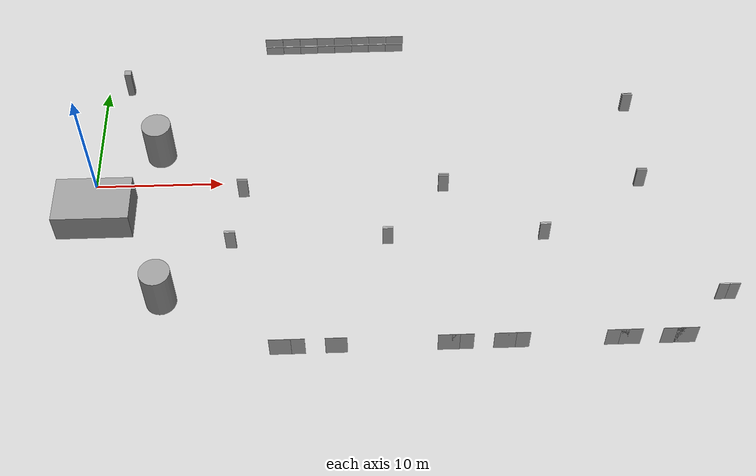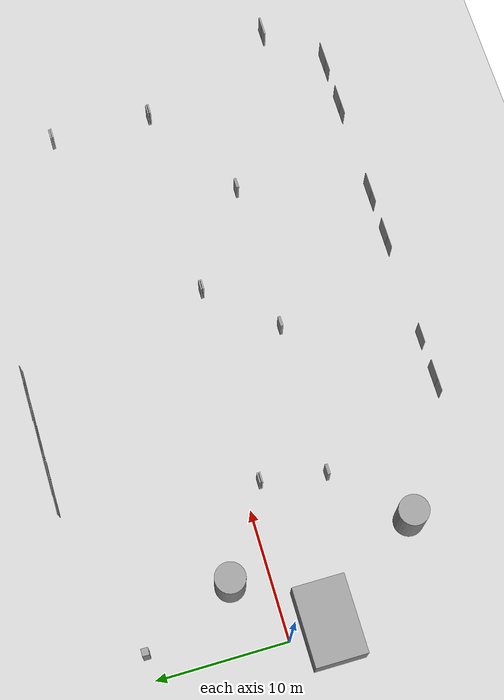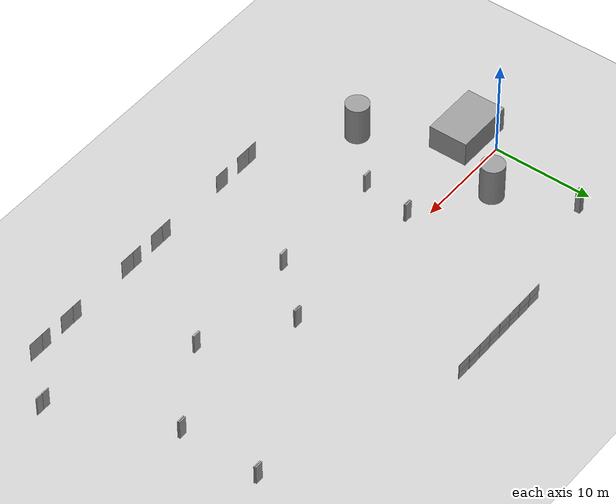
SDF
<sdf version="1.7">
 <world name="default">
  <model name="ground_plane">
   <static>1</static>
   <link name="link">
    <collision name="collision">
     <geometry><plane><normal>0 0 1</normal><size>100 100</size></plane></geometry>
     <surface>
      <contact><collide_bitmask>65535</collide_bitmask></contact>
      <friction><ode><mu>100</mu><mu2>50</mu2></ode></friction>
     </surface>
    </collision>
    <visual name="visual">
     <cast_shadows>0</cast_shadows>
     <geometry><plane><normal>0 0 1</normal><size>100 100</size></plane></geometry>
     <material>
      <script><uri>file://media/materials/scripts/gazebo.material</uri><name>Gazebo/Grey</name></script>
     </material>
    </visual>
   </link>
  </model>
  <model name="Desk_c2">
   <pose>12 0 -1.68526e+07 0 -0 0</pose>
   <link name="base_link">
    <pose>-44 -14 0 0 -0 0</pose>
    <inertial>
     <inertia><ixx>1</ixx><ixy>0</ixy><ixz>0</ixz><iyy>1</iyy><iyz>0</iyz><izz>1</izz></inertia>
     <mass>1</mass>
    </inertial>
    <velocity>0 0 0 0 -0 0</velocity>
    <acceleration>0 0 0 0 -0 0</acceleration>
    <wrench>0 0 0 0 -0 0</wrench>
   </link>
   <scale>1 1 1</scale>
  </model>
  <model name="VisitorChair_c2">
   <pose>12 3.2e-05 -1.45106e+07 0 -0 1.57</pose>
   <link name="body">
    <pose>-41 -15 0 0 0 -1.5708</pose>
    <inertial>
     <inertia><ixx>1</ixx><ixy>0</ixy><ixz>0</ixz><iyy>1</iyy><iyz>0</iyz><izz>1</izz></inertia>
     <mass>1</mass>
    </inertial>
    <velocity>0 0 0 0 -0 0</velocity>
    <acceleration>0 0 0 0 -0 0</acceleration>
    <wrench>0 0 0 0 -0 0</wrench>
   </link>
   <scale>1 1 1</scale>
  </model>
  <model name="WhiteCabinet_c2">
   <pose>12 0 -1.68526e+07 0 -0 0</pose>
   <link name="body">
    <pose>-42 -6.5 0 0 -0 0</pose>
    <inertial>
     <inertia><ixx>1</ixx><ixy>0</ixy><ixz>0</ixz><iyy>1</iyy><iyz>0</iyz><izz>1</izz></inertia>
     <mass>1</mass>
    </inertial>
    <velocity>0 0 0 0 -0 0</velocity>
    <acceleration>0 0 0 0 -0 0</acceleration>
    <wrench>0 0 0 0 -0 0</wrench>
   </link>
   <scale>1 1 1</scale>
  </model>
  <model name="TrashBin_c2">
   <pose>12 0 -1.68526e+07 0 -0 0</pose>
   <link name="body">
    <pose>-43.3 -6.5 0 0 -0 0</pose>
    <inertial>
     <inertia><ixx>1</ixx><ixy>0</ixy><ixz>0</ixz><iyy>1</iyy><iyz>0</iyz><izz>1</izz></inertia>
     <mass>1</mass>
    </inertial>
    <velocity>0 0 0 0 -0 0</velocity>
    <acceleration>0 0 0 0 -0 0</acceleration>
    <wrench>0 0 0 0 -0 0</wrench>
   </link>
   <scale>1 1 1</scale>
  </model>
  <model name="Desk_c3">
   <pose>24 0 -1.68526e+07 0 -0 0</pose>
   <link name="base_link">
    <pose>-44 -14 0 0 -0 0</pose>
    <inertial>
     <inertia><ixx>1</ixx><ixy>0</ixy><ixz>0</ixz><iyy>1</iyy><iyz>0</iyz><izz>1</izz></inertia>
     <mass>1</mass>
    </inertial>
    <velocity>0 0 0 0 -0 0</velocity>
    <acceleration>0 0 0 0 -0 0</acceleration>
    <wrench>0 0 0 0 -0 0</wrench>
   </link>
   <scale>1 1 1</scale>
  </model>
  <model name="VisitorChair_c3">
   <pose>24 -0 -1.68526e+07 0 -0 0</pose>
   <link name="body">
    <pose>-41 -15 0 0 0 -1.5708</pose>
    <inertial>
     <inertia><ixx>1</ixx><ixy>0</ixy><ixz>0</ixz><iyy>1</iyy><iyz>0</iyz><izz>1</izz></inertia>
     <mass>1</mass>
    </inertial>
    <velocity>0 0 0 0 -0 0</velocity>
    <acceleration>0 0 0 0 -0 0</acceleration>
    <wrench>0 0 0 0 -0 0</wrench>
   </link>
   <scale>1 1 1</scale>
  </model>
  <model name="WhiteCabinet_c3">
   <pose>24 0 -1.68526e+07 0 -0 0</pose>
   <link name="body">
    <pose>-42 -6.5 0 0 -0 0</pose>
    <inertial>
     <inertia><ixx>1</ixx><ixy>0</ixy><ixz>0</ixz><iyy>1</iyy><iyz>0</iyz><izz>1</izz></inertia>
     <mass>1</mass>
    </inertial>
    <velocity>0 0 0 0 -0 0</velocity>
    <acceleration>0 0 0 0 -0 0</acceleration>
    <wrench>0 0 0 0 -0 0</wrench>
   </link>
   <scale>1 1 1</scale>
  </model>
  <model name="TrashBin_c3">
   <pose>24 0 -1.68526e+07 0 -0 0</pose>
   <link name="body">
    <pose>-43.3 -6.5 0 0 -0 0</pose>
    <inertial>
     <inertia><ixx>1</ixx><ixy>0</ixy><ixz>0</ixz><iyy>1</iyy><iyz>0</iyz><izz>1</izz></inertia>
     <mass>1</mass>
    </inertial>
    <velocity>0 0 0 0 -0 0</velocity>
    <acceleration>0 0 0 0 -0 0</acceleration>
    <wrench>0 0 0 0 -0 0</wrench>
   </link>
   <scale>1 1 1</scale>
  </model>
  <model name="Desk_c4">
   <pose>56 0 -1.68526e+07 0 -0 0</pose>
   <link name="base_link">
    <pose>-44 -14 0 0 -0 0</pose>
    <inertial>
     <inertia><ixx>1</ixx><ixy>0</ixy><ixz>0</ixz><iyy>1</iyy><iyz>0</iyz><izz>1</izz></inertia>
     <mass>1</mass>
    </inertial>
    <velocity>0 0 0 0 -0 0</velocity>
    <acceleration>0 0 0 0 -0 0</acceleration>
    <wrench>0 0 0 0 -0 0</wrench>
   </link>
   <scale>1 1 1</scale>
  </model>
  <model name="VisitorChair_c4">
   <pose>56 -0 -1.68526e+07 0 -0 0</pose>
   <link name="body">
    <pose>-41 -15 0 0 0 -1.5708</pose>
    <inertial>
     <inertia><ixx>1</ixx><ixy>0</ixy><ixz>0</ixz><iyy>1</iyy><iyz>0</iyz><izz>1</izz></inertia>
     <mass>1</mass>
    </inertial>
    <velocity>0 0 0 0 -0 0</velocity>
    <acceleration>0 0 0 0 -0 0</acceleration>
    <wrench>0 0 0 0 -0 0</wrench>
   </link>
   <scale>1 1 1</scale>
  </model>
  <model name="WhiteCabinet_c4">
   <pose>56 0 -1.68526e+07 0 -0 0</pose>
   <link name="body">
    <pose>-42 -6.5 0 0 -0 0</pose>
    <inertial>
     <inertia><ixx>1</ixx><ixy>0</ixy><ixz>0</ixz><iyy>1</iyy><iyz>0</iyz><izz>1</izz></inertia>
     <mass>1</mass>
    </inertial>
    <velocity>0 0 0 0 -0 0</velocity>
    <acceleration>0 0 0 0 -0 0</acceleration>
    <wrench>0 0 0 0 -0 0</wrench>
   </link>
   <scale>1 1 1</scale>
  </model>
  <model name="TrashBin_c4">
   <pose>56 0 -1.68526e+07 0 -0 0</pose>
   <link name="body">
    <pose>-43.3 -6.5 0 0 -0 0</pose>
    <inertial>
     <inertia><ixx>1</ixx><ixy>0</ixy><ixz>0</ixz><iyy>1</iyy><iyz>0</iyz><izz>1</izz></inertia>
     <mass>1</mass>
    </inertial>
    <velocity>0 0 0 0 -0 0</velocity>
    <acceleration>0 0 0 0 -0 0</acceleration>
    <wrench>0 0 0 0 -0 0</wrench>
   </link>
   <scale>1 1 1</scale>
  </model>
  <model name="Desk_c5">
   <pose>68 0 -1.68526e+07 0 -0 0</pose>
   <link name="base_link">
    <pose>-44 -14 0 0 -0 0</pose>
    <inertial>
     <inertia><ixx>1</ixx><ixy>0</ixy><ixz>0</ixz><iyy>1</iyy><iyz>0</iyz><izz>1</izz></inertia>
     <mass>1</mass>
    </inertial>
    <velocity>0 0 0 0 -0 0</velocity>
    <acceleration>0 0 0 0 -0 0</acceleration>
    <wrench>0 0 0 0 -0 0</wrench>
   </link>
   <scale>1 1 1</scale>
  </model>
  <model name="VisitorChair_c5">
   <pose>68 -0 -1.68526e+07 0 -0 0</pose>
   <link name="body">
    <pose>-41 -15 0 0 0 -1.5708</pose>
    <inertial>
     <inertia><ixx>1</ixx><ixy>0</ixy><ixz>0</ixz><iyy>1</iyy><iyz>0</iyz><izz>1</izz></inertia>
     <mass>1</mass>
    </inertial>
    <velocity>0 0 0 0 -0 0</velocity>
    <acceleration>0 0 0 0 -0 0</acceleration>
    <wrench>0 0 0 0 -0 0</wrench>
   </link>
   <scale>1 1 1</scale>
  </model>
  <model name="WhiteCabinet_c5">
   <pose>68 0 -1.68526e+07 0 -0 0</pose>
   <link name="body">
    <pose>-42 -6.5 0 0 -0 0</pose>
    <inertial>
     <inertia><ixx>1</ixx><ixy>0</ixy><ixz>0</ixz><iyy>1</iyy><iyz>0</iyz><izz>1</izz></inertia>
     <mass>1</mass>
    </inertial>
    <velocity>0 0 0 0 -0 0</velocity>
    <acceleration>0 0 0 0 -0 0</acceleration>
    <wrench>0 0 0 0 -0 0</wrench>
   </link>
   <scale>1 1 1</scale>
  </model>
  <model name="TrashBin_c5">
   <pose>68 0 -1.68526e+07 0 -0 0</pose>
   <link name="body">
    <pose>-43.3 -6.5 0 0 -0 0</pose>
    <inertial>
     <inertia><ixx>1</ixx><ixy>0</ixy><ixz>0</ixz><iyy>1</iyy><iyz>0</iyz><izz>1</izz></inertia>
     <mass>1</mass>
    </inertial>
    <velocity>0 0 0 0 -0 0</velocity>
    <acceleration>0 0 0 0 -0 0</acceleration>
    <wrench>0 0 0 0 -0 0</wrench>
   </link>
   <scale>1 1 1</scale>
  </model>
  <model name="Desk_c7">
   <pose>8 15 -1.68526e+07 0 -0 0</pose>
   <link name="base_link">
    <pose>-44 -14 0 0 -0 0</pose>
    <inertial>
     <inertia><ixx>1</ixx><ixy>0</ixy><ixz>0</ixz><iyy>1</iyy><iyz>0</iyz><izz>1</izz></inertia>
     <mass>1</mass>
    </inertial>
    <velocity>0 0 0 0 -0 0</velocity>
    <acceleration>0 0 0 0 -0 0</acceleration>
    <wrench>0 0 0 0 -0 0</wrench>
   </link>
   <scale>1 1 1</scale>
  </model>
  <model name="VisitorChair_c7">
   <pose>8 15 -1.68526e+07 0 -0 0</pose>
   <link name="body">
    <pose>-41 -15 0 0 0 -1.5708</pose>
    <inertial>
     <inertia><ixx>1</ixx><ixy>0</ixy><ixz>0</ixz><iyy>1</iyy><iyz>0</iyz><izz>1</izz></inertia>
     <mass>1</mass>
    </inertial>
    <velocity>0 0 0 0 -0 0</velocity>
    <acceleration>0 0 0 0 -0 0</acceleration>
    <wrench>0 0 0 0 -0 0</wrench>
   </link>
   <scale>1 1 1</scale>
  </model>
  <model name="WhiteCabinet_c7">
   <pose>8 15 -1.68526e+07 0 -0 0</pose>
   <link name="body">
    <pose>-42 -6.5 0 0 -0 0</pose>
    <inertial>
     <inertia><ixx>1</ixx><ixy>0</ixy><ixz>0</ixz><iyy>1</iyy><iyz>0</iyz><izz>1</izz></inertia>
     <mass>1</mass>
    </inertial>
    <velocity>0 0 0 0 -0 0</velocity>
    <acceleration>0 0 0 0 -0 0</acceleration>
    <wrench>0 0 0 0 -0 0</wrench>
   </link>
   <scale>1 1 1</scale>
  </model>
  <model name="TrashBin_c7">
   <pose>8 15 -1.68526e+07 0 -0 0</pose>
   <link name="body">
    <pose>-43.3 -6.5 0 0 -0 0</pose>
    <inertial>
     <inertia><ixx>1</ixx><ixy>0</ixy><ixz>0</ixz><iyy>1</iyy><iyz>0</iyz><izz>1</izz></inertia>
     <mass>1</mass>
    </inertial>
    <velocity>0 0 0 0 -0 0</velocity>
    <acceleration>0 0 0 0 -0 0</acceleration>
    <wrench>0 0 0 0 -0 0</wrench>
   </link>
   <scale>1 1 1</scale>
  </model>
  <model name="door_08x2m_clone_0_clone_clone">
   <link name="link">
    <visual name="visual">
     <geometry><box><size>0.1 0.8 2</size></box></geometry>
     <material>
      <script>
       <uri>model://door_08x2m/material/script</uri>
       <uri>model://door_08x2m/material/textures</uri>
       <name>Custom/door_08x2m</name>
      </script>
     </material>
    </visual>
   </link>
   <static>1</static>
   <pose>11 -6.25 1 0 0 -1.5708</pose>
  </model>
  <model name="door_08x2m_clone_clone_clone_clone">
   <link name="link">
    <visual name="visual">
     <geometry><box><size>0.1 0.8 2</size></box></geometry>
     <material>
      <script>
       <uri>model://door_08x2m/material/script</uri>
       <uri>model://door_08x2m/material/textures</uri>
       <name>Custom/door_08x2m</name>
      </script>
     </material>
    </visual>
   </link>
   <static>1</static>
   <pose>11 -6.15 1 0 0 -1.5708</pose>
  </model>
  <model name="window_curtains_clone_clone_clone_clone_0_clone_0_clone">
   <link name="link">
    <visual name="visual">
     <geometry><box><size>0.02 1.5676 2</size></box></geometry>
     <material>
      <script>
       <uri>model://window_curtains/material/script</uri>
       <uri>model://window_curtains/material/textures</uri>
       <name>Custom/window_curtains</name>
      </script>
      <emissive>0 1 0 1</emissive>
     </material>
    </visual>
   </link>
   <static>1</static>
   <pose>19 -16.1 1.53112 0 0 -1.5708</pose>
  </model>
  <model name="window_curtains_clone_clone_clone_clone_0_clone_0_clone_clone">
   <link name="link">
    <visual name="visual">
     <geometry><box><size>0.02 1.5676 2</size></box></geometry>
     <material>
      <script>
       <uri>model://window_curtains/material/script</uri>
       <uri>model://window_curtains/material/textures</uri>
       <name>Custom/window_curtains</name>
      </script>
      <emissive>0 1 0 1</emissive>
     </material>
    </visual>
   </link>
   <static>1</static>
   <pose>16 -16.1 1.53112 0 0 -1.5708</pose>
  </model>
  <model name="window_curtains_clone_clone_clone_clone_0_clone_0_clone_clone_clone">
   <link name="link">
    <visual name="visual">
     <geometry><box><size>0.02 1.5676 2</size></box></geometry>
     <material>
      <script>
       <uri>model://window_curtains/material/script</uri>
       <uri>model://window_curtains/material/textures</uri>
       <name>Custom/window_curtains</name>
      </script>
      <emissive>0 1 0 1</emissive>
     </material>
    </visual>
   </link>
   <static>1</static>
   <pose>15 -16.1 1.53112 0 0 -1.5708</pose>
  </model>
  <model name="window_curtains_clone_clone_clone_clone_0_clone_0_clone_0">
   <link name="link">
    <visual name="visual">
     <geometry><box><size>0.02 1.5676 2</size></box></geometry>
     <material>
      <script>
       <uri>model://window_curtains/material/script</uri>
       <uri>model://window_curtains/material/textures</uri>
       <name>Custom/window_curtains</name>
      </script>
      <emissive>0 1 0 1</emissive>
     </material>
    </visual>
   </link>
   <static>1</static>
   <pose>32 -16.1 1.53112 0 0 -1.5708</pose>
  </model>
  <model name="window_curtains_clone_clone_clone_clone_0_clone_0_clone_1">
   <link name="link">
    <visual name="visual">
     <geometry><box><size>0.02 1.5676 2</size></box></geometry>
     <material>
      <script>
       <uri>model://window_curtains/material/script</uri>
       <uri>model://window_curtains/material/textures</uri>
       <name>Custom/window_curtains</name>
      </script>
      <emissive>0 1 0 1</emissive>
     </material>
    </visual>
   </link>
   <static>1</static>
   <pose>31 -16.1 1.53112 0 0 -1.5708</pose>
  </model>
  <model name="window_curtains_clone_clone_clone_clone_0_clone_0_clone_clone_clone_0">
   <link name="link">
    <visual name="visual">
     <geometry><box><size>0.02 1.5676 2</size></box></geometry>
     <material>
      <script>
       <uri>model://window_curtains/material/script</uri>
       <uri>model://window_curtains/material/textures</uri>
       <name>Custom/window_curtains</name>
      </script>
      <emissive>0 1 0 1</emissive>
     </material>
    </visual>
   </link>
   <static>1</static>
   <pose>28 -16.1 1.53112 0 0 -1.5708</pose>
  </model>
  <model name="window_curtains_clone_clone_clone_clone_0_clone_0_clone_clone_clone_1">
   <link name="link">
    <visual name="visual">
     <geometry><box><size>0.02 1.5676 2</size></box></geometry>
     <material>
      <script>
       <uri>model://window_curtains/material/script</uri>
       <uri>model://window_curtains/material/textures</uri>
       <name>Custom/window_curtains</name>
      </script>
      <emissive>0 1 0 1</emissive>
     </material>
    </visual>
   </link>
   <static>1</static>
   <pose>27 -16.1 1.53112 0 0 -1.5708</pose>
  </model>
  <model name="window_curtains_clone_clone_clone_clone_0_clone_0_clone_0_clone">
   <link name="link">
    <visual name="visual">
     <geometry><box><size>0.02 1.5676 2</size></box></geometry>
     <material>
      <script>
       <uri>model://window_curtains/material/script</uri>
       <uri>model://window_curtains/material/textures</uri>
       <name>Custom/window_curtains</name>
      </script>
      <emissive>0 1 0 1</emissive>
     </material>
    </visual>
   </link>
   <static>1</static>
   <pose>44 -16.1 1.53112 0 0 -1.5708</pose>
  </model>
  <model name="window_curtains_clone_clone_clone_clone_0_clone_0_clone_0_clone_clone">
   <link name="link">
    <visual name="visual">
     <geometry><box><size>0.02 1.5676 2</size></box></geometry>
     <material>
      <script>
       <uri>model://window_curtains/material/script</uri>
       <uri>model://window_curtains/material/textures</uri>
       <name>Custom/window_curtains</name>
      </script>
      <emissive>0 1 0 1</emissive>
     </material>
    </visual>
   </link>
   <static>1</static>
   <pose>43 -16.1 1.53112 0 0 -1.5708</pose>
  </model>
  <model name="window_curtains_clone_clone_clone_clone_0_clone_0_clone_clone_clone_0_clone">
   <link name="link">
    <visual name="visual">
     <geometry><box><size>0.02 1.5676 2</size></box></geometry>
     <material>
      <script>
       <uri>model://window_curtains/material/script</uri>
       <uri>model://window_curtains/material/textures</uri>
       <name>Custom/window_curtains</name>
      </script>
      <emissive>0 1 0 1</emissive>
     </material>
    </visual>
   </link>
   <static>1</static>
   <pose>40 -16.1 1.53112 0 0 -1.5708</pose>
  </model>
  <model name="window_curtains_clone_clone_clone_clone_0_clone_0_clone_clone_clone_0_clone_0">
   <link name="link">
    <visual name="visual">
     <geometry><box><size>0.02 1.5676 2</size></box></geometry>
     <material>
      <script>
       <uri>model://window_curtains/material/script</uri>
       <uri>model://window_curtains/material/textures</uri>
       <name>Custom/window_curtains</name>
      </script>
      <emissive>0 1 0 1</emissive>
     </material>
    </visual>
   </link>
   <static>1</static>
   <pose>39 -16.1 1.53112 0 0 -1.5708</pose>
  </model>
  <model name="door_08x2m_clone_clone_clone_clone_clone">
   <link name="link">
    <visual name="visual">
     <geometry><box><size>0.1 0.8 2</size></box></geometry>
     <material>
      <script>
       <uri>model://door_08x2m/material/script</uri>
       <uri>model://door_08x2m/material/textures</uri>
       <name>Custom/door_08x2m</name>
      </script>
     </material>
    </visual>
   </link>
   <static>1</static>
   <pose>23 -6.15 1 0 0 -1.5708</pose>
  </model>
  <model name="door_08x2m_clone_clone_clone_clone_clone_0">
   <link name="link">
    <visual name="visual">
     <geometry><box><size>0.1 0.8 2</size></box></geometry>
     <material>
      <script>
       <uri>model://door_08x2m/material/script</uri>
       <uri>model://door_08x2m/material/textures</uri>
       <name>Custom/door_08x2m</name>
      </script>
     </material>
    </visual>
   </link>
   <static>1</static>
   <pose>35 -6.15 1 0 0 -1.5708</pose>
  </model>
  <model name="door_08x2m_clone_0_clone_clone_clone">
   <link name="link">
    <visual name="visual">
     <geometry><box><size>0.1 0.8 2</size></box></geometry>
     <material>
      <script>
       <uri>model://door_08x2m/material/script</uri>
       <uri>model://door_08x2m/material/textures</uri>
       <name>Custom/door_08x2m</name>
      </script>
     </material>
    </visual>
   </link>
   <static>1</static>
   <pose>23 -6.25 1 0 0 -1.5708</pose>
  </model>
  <model name="door_08x2m_clone_0_clone_clone_clone_0">
   <link name="link">
    <visual name="visual">
     <geometry><box><size>0.1 0.8 2</size></box></geometry>
     <material>
      <script>
       <uri>model://door_08x2m/material/script</uri>
       <uri>model://door_08x2m/material/textures</uri>
       <name>Custom/door_08x2m</name>
      </script>
     </material>
    </visual>
   </link>
   <static>1</static>
   <pose>35 -6.25 1 0 0 -1.5708</pose>
  </model>
  <model name="door_08x2m_clone_clone_1_clone">
   <link name="link">
    <visual name="visual">
     <geometry><box><size>0.1 0.8 2</size></box></geometry>
     <material>
      <script>
       <uri>model://door_08x2m/material/script</uri>
       <uri>model://door_08x2m/material/textures</uri>
       <name>Custom/door_08x2m</name>
      </script>
     </material>
    </visual>
   </link>
   <static>1</static>
   <pose>48.25 -12.15 0.995236 -3.14159 0.001592 -1.56349</pose>
  </model>
  <model name="door_08x2m_clone_clone_clone_clone_clone_0_clone">
   <link name="link">
    <visual name="visual">
     <geometry><box><size>0.1 0.8 2</size></box></geometry>
     <material>
      <script>
       <uri>model://door_08x2m/material/script</uri>
       <uri>model://door_08x2m/material/textures</uri>
       <name>Custom/door_08x2m</name>
      </script>
     </material>
    </visual>
   </link>
   <static>1</static>
   <pose>47.5 -12.15 1 0 0 -1.5708</pose>
  </model>
  <model name="door_08x2m_clone_1_clone_clone_clone_clone">
   <link name="link">
    <visual name="visual">
     <geometry><box><size>0.1 0.8 2</size></box></geometry>
     <material>
      <script>
       <uri>model://door_08x2m/material/script</uri>
       <uri>model://door_08x2m/material/textures</uri>
       <name>Custom/door_08x2m</name>
      </script>
     </material>
    </visual>
   </link>
   <static>1</static>
   <pose>11.779 -1.30375 1 0 0 -1.5708</pose>
  </model>
  <model name="door_08x2m_clone_1_clone_clone_clone_clone_0">
   <link name="link">
    <visual name="visual">
     <geometry><box><size>0.1 0.8 2</size></box></geometry>
     <material>
      <script>
       <uri>model://door_08x2m/material/script</uri>
       <uri>model://door_08x2m/material/textures</uri>
       <name>Custom/door_08x2m</name>
      </script>
     </material>
    </visual>
   </link>
   <static>1</static>
   <pose>27.5451 -1.28656 1 0 0 -1.5708</pose>
  </model>
  <model name="door_08x2m_clone_1_clone_clone_clone_clone_1">
   <link name="link">
    <visual name="visual">
     <geometry><box><size>0.1 0.8 2</size></box></geometry>
     <material>
      <script>
       <uri>model://door_08x2m/material/script</uri>
       <uri>model://door_08x2m/material/textures</uri>
       <name>Custom/door_08x2m</name>
      </script>
     </material>
    </visual>
   </link>
   <static>1</static>
   <pose>43.1637 -1.29793 1 0 0 -1.5708</pose>
  </model>
  <model name="door_08x2m_clone_1_clone_clone_clone_clone_2">
   <link name="link">
    <visual name="visual">
     <geometry><box><size>0.1 0.8 2</size></box></geometry>
     <material>
      <script>
       <uri>model://door_08x2m/material/script</uri>
       <uri>model://door_08x2m/material/textures</uri>
       <name>Custom/door_08x2m</name>
      </script>
     </material>
    </visual>
   </link>
   <static>1</static>
   <pose>43.2274 6.68407 1 0 0 -1.5708</pose>
  </model>
  <model name="door_08x2m_clone_1_clone_0_clone_clone_0">
   <link name="link">
    <visual name="visual">
     <geometry><box><size>0.1 0.8 2</size></box></geometry>
     <material>
      <script>
       <uri>model://door_08x2m/material/script</uri>
       <uri>model://door_08x2m/material/textures</uri>
       <name>Custom/door_08x2m</name>
      </script>
     </material>
    </visual>
   </link>
   <static>1</static>
   <pose>11.7691 -1.14483 1 0 0 -1.5708</pose>
  </model>
  <model name="door_08x2m_clone_1_clone_0_clone_clone_1">
   <link name="link">
    <visual name="visual">
     <geometry><box><size>0.1 0.8 2</size></box></geometry>
     <material>
      <script>
       <uri>model://door_08x2m/material/script</uri>
       <uri>model://door_08x2m/material/textures</uri>
       <name>Custom/door_08x2m</name>
      </script>
     </material>
    </visual>
   </link>
   <static>1</static>
   <pose>27.544 -1.1428 1 0 0 -1.5708</pose>
  </model>
  <model name="door_08x2m_clone_1_clone_0_clone_clone_2">
   <link name="link">
    <visual name="visual">
     <geometry><box><size>0.1 0.8 2</size></box></geometry>
     <material>
      <script>
       <uri>model://door_08x2m/material/script</uri>
       <uri>model://door_08x2m/material/textures</uri>
       <name>Custom/door_08x2m</name>
      </script>
     </material>
    </visual>
   </link>
   <static>1</static>
   <pose>43.1461 -1.14314 1 0 0 -1.5708</pose>
  </model>
  <model name="door_08x2m_clone_1_clone_0_clone_clone_3">
   <link name="link">
    <visual name="visual">
     <geometry><box><size>0.1 0.8 2</size></box></geometry>
     <material>
      <script>
       <uri>model://door_08x2m/material/script</uri>
       <uri>model://door_08x2m/material/textures</uri>
       <name>Custom/door_08x2m</name>
      </script>
     </material>
    </visual>
   </link>
   <static>1</static>
   <pose>43.1774 6.8268 1 0 0 -1.5708</pose>
  </model>
  <model name="tv_65in_emissive_clone_0">
   <link name="link">
    <visual name="visual">
     <geometry><box><size>0.05 1.45 0.83</size></box></geometry>
     <material>
      <script>
       <uri>model://tv_65in_emissive/material/script</uri>
       <uri>model://tv_65in_emissive/material/textures</uri>
       <name>Custom/tv_emissive</name>
      </script>
     </material>
    </visual>
   </link>
   <static>1</static>
   <pose>13.9729 13.6574 2 0 -0 1.57</pose>
  </model>
  <model name="tv_65in_emissive_clone_1">
   <link name="link">
    <visual name="visual">
     <geometry><box><size>0.05 1.45 0.83</size></box></geometry>
     <material>
      <script>
       <uri>model://tv_65in_emissive/material/script</uri>
       <uri>model://tv_65in_emissive/material/textures</uri>
       <name>Custom/tv_emissive</name>
      </script>
     </material>
    </visual>
   </link>
   <static>1</static>
   <pose>15.4294 13.6791 2 0 -0 1.57</pose>
  </model>
  <model name="tv_65in_emissive_clone_2">
   <link name="link">
    <visual name="visual">
     <geometry><box><size>0.05 1.45 0.83</size></box></geometry>
     <material>
      <script>
       <uri>model://tv_65in_emissive/material/script</uri>
       <uri>model://tv_65in_emissive/material/textures</uri>
       <name>Custom/tv_emissive</name>
      </script>
     </material>
    </visual>
   </link>
   <static>1</static>
   <pose>16.8875 13.6835 2 0 -0 1.57</pose>
  </model>
  <model name="tv_65in_emissive_clone_3">
   <link name="link">
    <visual name="visual">
     <geometry><box><size>0.05 1.45 0.83</size></box></geometry>
     <material>
      <script>
       <uri>model://tv_65in_emissive/material/script</uri>
       <uri>model://tv_65in_emissive/material/textures</uri>
       <name>Custom/tv_emissive</name>
      </script>
     </material>
    </visual>
   </link>
   <static>1</static>
   <pose>18.3383 13.6808 2 0 -0 1.57</pose>
  </model>
  <model name="tv_65in_emissive_clone_4">
   <link name="link">
    <visual name="visual">
     <geometry><box><size>0.05 1.45 0.83</size></box></geometry>
     <material>
      <script>
       <uri>model://tv_65in_emissive/material/script</uri>
       <uri>model://tv_65in_emissive/material/textures</uri>
       <name>Custom/tv_emissive</name>
      </script>
     </material>
    </visual>
   </link>
   <static>1</static>
   <pose>19.8077 13.6747 2 0 -0 1.57</pose>
  </model>
  <model name="tv_65in_emissive_clone_5">
   <link name="link">
    <visual name="visual">
     <geometry><box><size>0.05 1.45 0.83</size></box></geometry>
     <material>
      <script>
       <uri>model://tv_65in_emissive/material/script</uri>
       <uri>model://tv_65in_emissive/material/textures</uri>
       <name>Custom/tv_emissive</name>
      </script>
     </material>
    </visual>
   </link>
   <static>1</static>
   <pose>21.2797 13.7055 2 0 -0 1.57</pose>
  </model>
  <model name="tv_65in_emissive_clone_6">
   <link name="link">
    <visual name="visual">
     <geometry><box><size>0.05 1.45 0.83</size></box></geometry>
     <material>
      <script>
       <uri>model://tv_65in_emissive/material/script</uri>
       <uri>model://tv_65in_emissive/material/textures</uri>
       <name>Custom/tv_emissive</name>
      </script>
     </material>
    </visual>
   </link>
   <static>1</static>
   <pose>22.7412 13.7075 2 0 -0 1.57</pose>
  </model>
  <model name="tv_65in_emissive_clone_7">
   <link name="link">
    <visual name="visual">
     <geometry><box><size>0.05 1.45 0.83</size></box></geometry>
     <material>
      <script>
       <uri>model://tv_65in_emissive/material/script</uri>
       <uri>model://tv_65in_emissive/material/textures</uri>
       <name>Custom/tv_emissive</name>
      </script>
     </material>
    </visual>
   </link>
   <static>1</static>
   <pose>24.2147 13.691 2 0 -0 1.57</pose>
  </model>
  <model name="tv_65in_emissive_clone_clone_clone">
   <link name="link">
    <visual name="visual">
     <geometry><box><size>0.05 1.45 0.83</size></box></geometry>
     <material>
      <script>
       <uri>model://tv_65in_emissive/material/script</uri>
       <uri>model://tv_65in_emissive/material/textures</uri>
       <name>Custom/tv_emissive</name>
      </script>
     </material>
    </visual>
   </link>
   <static>1</static>
   <pose>13.984 13.6169 1.09556 0 -0 1.57</pose>
  </model>
  <model name="tv_65in_emissive_clone_clone_clone_0">
   <link name="link">
    <visual name="visual">
     <geometry><box><size>0.05 1.45 0.83</size></box></geometry>
     <material>
      <script>
       <uri>model://tv_65in_emissive/material/script</uri>
       <uri>model://tv_65in_emissive/material/textures</uri>
       <name>Custom/tv_emissive</name>
      </script>
     </material>
    </visual>
   </link>
   <static>1</static>
   <pose>15.4406 13.6229 1.09556 0 -0 1.57</pose>
  </model>
  <model name="tv_65in_emissive_clone_clone_clone_1">
   <link name="link">
    <visual name="visual">
     <geometry><box><size>0.05 1.45 0.83</size></box></geometry>
     <material>
      <script>
       <uri>model://tv_65in_emissive/material/script</uri>
       <uri>model://tv_65in_emissive/material/textures</uri>
       <name>Custom/tv_emissive</name>
      </script>
     </material>
    </visual>
   </link>
   <static>1</static>
   <pose>16.8865 13.6125 1.09556 0 -0 1.57</pose>
  </model>
  <model name="tv_65in_emissive_clone_clone_clone_2">
   <link name="link">
    <visual name="visual">
     <geometry><box><size>0.05 1.45 0.83</size></box></geometry>
     <material>
      <script>
       <uri>model://tv_65in_emissive/material/script</uri>
       <uri>model://tv_65in_emissive/material/textures</uri>
       <name>Custom/tv_emissive</name>
      </script>
     </material>
    </visual>
   </link>
   <static>1</static>
   <pose>18.3451 13.6378 1.09556 0 -0 1.57</pose>
  </model>
  <model name="tv_65in_emissive_clone_clone_clone_3">
   <link name="link">
    <visual name="visual">
     <geometry><box><size>0.05 1.45 0.83</size></box></geometry>
     <material>
      <script>
       <uri>model://tv_65in_emissive/material/script</uri>
       <uri>model://tv_65in_emissive/material/textures</uri>
       <name>Custom/tv_emissive</name>
      </script>
     </material>
    </visual>
   </link>
   <static>1</static>
   <pose>19.8044 13.6395 1.09556 0 -0 1.57</pose>
  </model>
  <model name="tv_65in_emissive_clone_clone_clone_4">
   <link name="link">
    <visual name="visual">
     <geometry><box><size>0.05 1.45 0.83</size></box></geometry>
     <material>
      <script>
       <uri>model://tv_65in_emissive/material/script</uri>
       <uri>model://tv_65in_emissive/material/textures</uri>
       <name>Custom/tv_emissive</name>
      </script>
     </material>
    </visual>
   </link>
   <static>1</static>
   <pose>21.2635 13.6521 1.09556 0 -0 1.57</pose>
  </model>
  <model name="tv_65in_emissive_clone_clone_clone_5">
   <link name="link">
    <visual name="visual">
     <geometry><box><size>0.05 1.45 0.83</size></box></geometry>
     <material>
      <script>
       <uri>model://tv_65in_emissive/material/script</uri>
       <uri>model://tv_65in_emissive/material/textures</uri>
       <name>Custom/tv_emissive</name>
      </script>
     </material>
    </visual>
   </link>
   <static>1</static>
   <pose>22.7195 13.6565 1.09556 0 -0 1.57</pose>
  </model>
  <model name="tv_65in_emissive_clone_clone_clone_6">
   <link name="link">
    <visual name="visual">
     <geometry><box><size>0.05 1.45 0.83</size></box></geometry>
     <material>
      <script>
       <uri>model://tv_65in_emissive/material/script</uri>
       <uri>model://tv_65in_emissive/material/textures</uri>
       <name>Custom/tv_emissive</name>
      </script>
     </material>
    </visual>
   </link>
   <static>1</static>
   <pose>24.1711 13.6441 1.09556 0 -0 1.57</pose>
  </model>
  <model name="unit_cylinder_clone">
   <pose>6.00008 -11 1.95697 0 -0 0.001087</pose>
   <link name="link">
    <inertial>
     <mass>1</mass>
     <inertia><ixx>0.145833</ixx><ixy>0</ixy><ixz>0</ixz><iyy>0.145833</iyy><iyz>0</iyz><izz>0.125</izz></inertia>
    </inertial>
    <collision name="collision">
     <geometry><cylinder><radius>1.15065</radius><length>3.91395</length></cylinder></geometry>
    </collision>
    <visual name="visual">
     <geometry><cylinder><radius>1.15065</radius><length>3.91395</length></cylinder></geometry>
     <material>
      <script><name>Gazebo/Grey</name><uri>file://media/materials/scripts/gazebo.material</uri></script>
     </material>
    </visual>
   </link>
  </model>
  <model name="unit_cylinder_clone_clone">
   <pose>5.00007 3 1.95697 0 -0 0.001084</pose>
   <link name="link">
    <inertial>
     <mass>1</mass>
     <inertia><ixx>0.145833</ixx><ixy>0</ixy><ixz>0</ixz><iyy>0.145833</iyy><iyz>0</iyz><izz>0.125</izz></inertia>
    </inertial>
    <collision name="collision">
     <geometry><cylinder><radius>1.15065</radius><length>3.91395</length></cylinder></geometry>
    </collision>
    <visual name="visual">
     <geometry><cylinder><radius>1.15065</radius><length>3.91395</length></cylinder></geometry>
     <material>
      <script><name>Gazebo/Grey</name><uri>file://media/materials/scripts/gazebo.material</uri></script>
     </material>
    </visual>
   </link>
  </model>
  <model name="unit_box">
   <pose>0.377701 -3.01838 1.25568 0 0.000716 0</pose>
   <link name="link">
    <inertial>
     <mass>1</mass>
     <inertia>
      <ixx>0.166667</ixx>
      <ixy>0</ixy>
      <ixz>0</ixz>
      <iyy>0.166667</iyy>
      <iyz>0</iyz>
      <izz>0.166667</izz>
     </inertia>
    </inertial>
    <collision name="collision"><geometry><box><size>5.8999 3.92518 2.51558</size></box></geometry></collision>
    <visual name="visual">
     <geometry><box><size>5.8999 3.92518 2.51558</size></box></geometry>
     <material>
      <script><name>Gazebo/Grey</name><uri>file://media/materials/scripts/gazebo.material</uri></script>
     </material>
    </visual>
   </link>
  </model>
  <model name="unit_box_0">
   <pose>1.89374 10.1374 1.23665 1e-06 0 0.000358</pose>
   <link name="link">
    <inertial>
     <mass>1</mass>
     <inertia>
      <ixx>0.166667</ixx>
      <ixy>0</ixy>
      <ixz>0</ixz>
      <iyy>0.166667</iyy>
      <iyz>0</iyz>
      <izz>0.166667</izz>
     </inertia>
    </inertial>
    <collision name="collision"><geometry><box><size>0.54701 0.537476 2.4733</size></box></geometry></collision>
    <visual name="visual">
     <geometry><box><size>0.54701 0.537476 2.4733</size></box></geometry>
     <material>
      <script><name>Gazebo/Grey</name><uri>file://media/materials/scripts/gazebo.material</uri></script>
     </material>
    </visual>
   </link>
  </model>
 </world>
</sdf>
